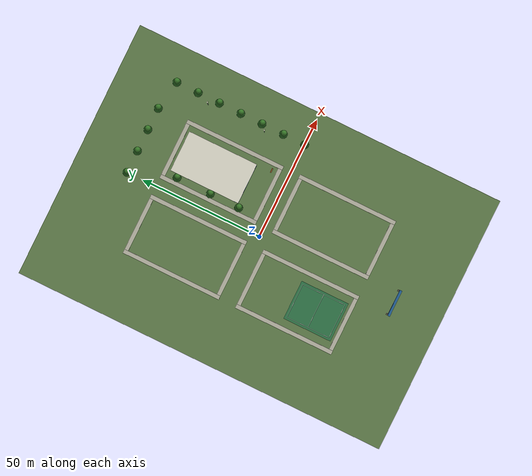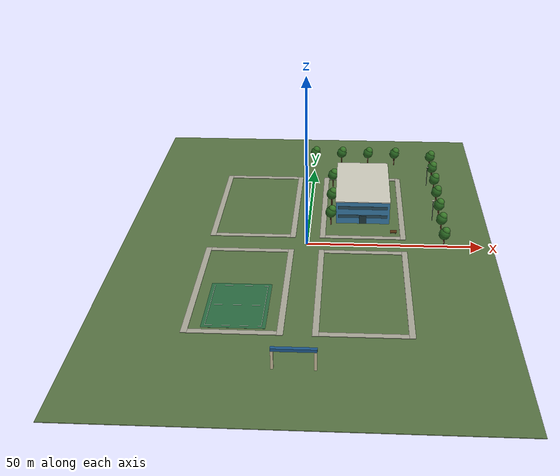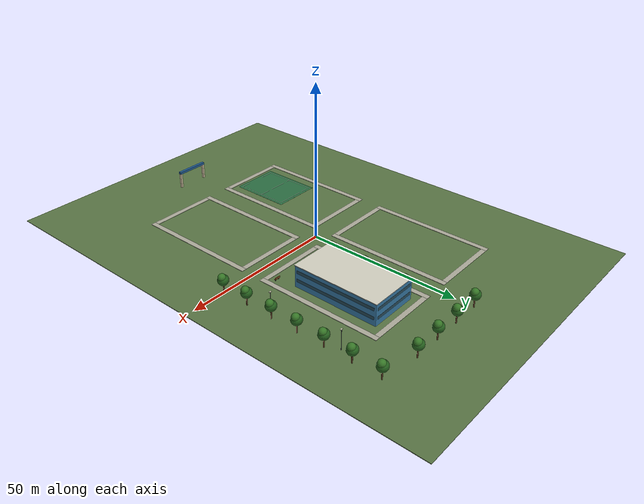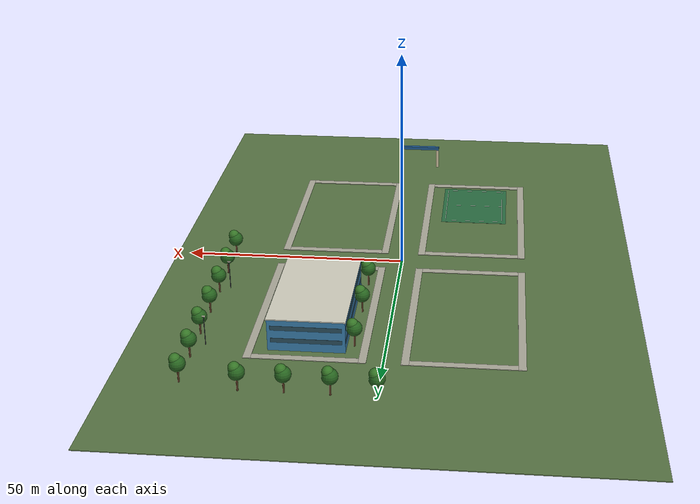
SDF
<sdf version="1.8">
 <world name="ute_city_v1">
  <model name="ground">
   <static>true</static>
   <link name="link">
    <visual name="ground">
     <pose>0 0 -0.1 0 0 0</pose>
     <geometry><box><size>106 154 0.2</size></box></geometry>
     <material>
      <ambient>0.35 0.46 0.27 1</ambient>
      <diffuse>0.35 0.46 0.27 1</diffuse>
      <specular>0.05 0.05 0.05 1</specular>
     </material>
    </visual>
    <collision name="ground_collision">
     <pose>0 0 -0.1 0 0 0</pose>
     <geometry><box><size>106 154 0.2</size></box></geometry>
    </collision>
   </link>
  </model>
  <model name="sidewalks">
   <static>true</static>
   <link name="link">
    <visual name="walk_0_0_w">
     <pose>-27.7 -24 0.075 0 0 0</pose>
     <geometry><box><size>1.6 41 0.15</size></box></geometry>
     <material>
      <ambient>0.68 0.67 0.61 1</ambient>
      <diffuse>0.68 0.67 0.61 1</diffuse>
      <specular>0.05 0.05 0.05 1</specular>
     </material>
    </visual>
    <collision name="walk_0_0_w_collision">
     <pose>-27.7 -24 0.075 0 0 0</pose>
     <geometry><box><size>1.6 41 0.15</size></box></geometry>
    </collision>
    <visual name="walk_0_0_e">
     <pose>-4.3 -24 0.075 0 0 0</pose>
     <geometry><box><size>1.6 41 0.15</size></box></geometry>
     <material>
      <ambient>0.68 0.67 0.61 1</ambient>
      <diffuse>0.68 0.67 0.61 1</diffuse>
      <specular>0.05 0.05 0.05 1</specular>
     </material>
    </visual>
    <collision name="walk_0_0_e_collision">
     <pose>-4.3 -24 0.075 0 0 0</pose>
     <geometry><box><size>1.6 41 0.15</size></box></geometry>
    </collision>
    <visual name="walk_0_0_s">
     <pose>-16 -43.7 0.075 0 0 0</pose>
     <geometry><box><size>21.8 1.6 0.15</size></box></geometry>
     <material>
      <ambient>0.68 0.67 0.61 1</ambient>
      <diffuse>0.68 0.67 0.61 1</diffuse>
      <specular>0.05 0.05 0.05 1</specular>
     </material>
    </visual>
    <collision name="walk_0_0_s_collision">
     <pose>-16 -43.7 0.075 0 0 0</pose>
     <geometry><box><size>21.8 1.6 0.15</size></box></geometry>
    </collision>
    <visual name="walk_0_0_n">
     <pose>-16 -4.3 0.075 0 0 0</pose>
     <geometry><box><size>21.8 1.6 0.15</size></box></geometry>
     <material>
      <ambient>0.68 0.67 0.61 1</ambient>
      <diffuse>0.68 0.67 0.61 1</diffuse>
      <specular>0.05 0.05 0.05 1</specular>
     </material>
    </visual>
    <collision name="walk_0_0_n_collision">
     <pose>-16 -4.3 0.075 0 0 0</pose>
     <geometry><box><size>21.8 1.6 0.15</size></box></geometry>
    </collision>
    <visual name="walk_0_1_w">
     <pose>-27.7 24 0.075 0 0 0</pose>
     <geometry><box><size>1.6 41 0.15</size></box></geometry>
     <material>
      <ambient>0.68 0.67 0.61 1</ambient>
      <diffuse>0.68 0.67 0.61 1</diffuse>
      <specular>0.05 0.05 0.05 1</specular>
     </material>
    </visual>
    <collision name="walk_0_1_w_collision">
     <pose>-27.7 24 0.075 0 0 0</pose>
     <geometry><box><size>1.6 41 0.15</size></box></geometry>
    </collision>
    <visual name="walk_0_1_e">
     <pose>-4.3 24 0.075 0 0 0</pose>
     <geometry><box><size>1.6 41 0.15</size></box></geometry>
     <material>
      <ambient>0.68 0.67 0.61 1</ambient>
      <diffuse>0.68 0.67 0.61 1</diffuse>
      <specular>0.05 0.05 0.05 1</specular>
     </material>
    </visual>
    <collision name="walk_0_1_e_collision">
     <pose>-4.3 24 0.075 0 0 0</pose>
     <geometry><box><size>1.6 41 0.15</size></box></geometry>
    </collision>
    <visual name="walk_0_1_s">
     <pose>-16 4.3 0.075 0 0 0</pose>
     <geometry><box><size>21.8 1.6 0.15</size></box></geometry>
     <material>
      <ambient>0.68 0.67 0.61 1</ambient>
      <diffuse>0.68 0.67 0.61 1</diffuse>
      <specular>0.05 0.05 0.05 1</specular>
     </material>
    </visual>
    <collision name="walk_0_1_s_collision">
     <pose>-16 4.3 0.075 0 0 0</pose>
     <geometry><box><size>21.8 1.6 0.15</size></box></geometry>
    </collision>
    <visual name="walk_0_1_n">
     <pose>-16 43.7 0.075 0 0 0</pose>
     <geometry><box><size>21.8 1.6 0.15</size></box></geometry>
     <material>
      <ambient>0.68 0.67 0.61 1</ambient>
      <diffuse>0.68 0.67 0.61 1</diffuse>
      <specular>0.05 0.05 0.05 1</specular>
     </material>
    </visual>
    <collision name="walk_0_1_n_collision">
     <pose>-16 43.7 0.075 0 0 0</pose>
     <geometry><box><size>21.8 1.6 0.15</size></box></geometry>
    </collision>
    <visual name="walk_1_0_w">
     <pose>4.3 -24 0.075 0 0 0</pose>
     <geometry><box><size>1.6 41 0.15</size></box></geometry>
     <material>
      <ambient>0.68 0.67 0.61 1</ambient>
      <diffuse>0.68 0.67 0.61 1</diffuse>
      <specular>0.05 0.05 0.05 1</specular>
     </material>
    </visual>
    <collision name="walk_1_0_w_collision">
     <pose>4.3 -24 0.075 0 0 0</pose>
     <geometry><box><size>1.6 41 0.15</size></box></geometry>
    </collision>
    <visual name="walk_1_0_e">
     <pose>27.7 -24 0.075 0 0 0</pose>
     <geometry><box><size>1.6 41 0.15</size></box></geometry>
     <material>
      <ambient>0.68 0.67 0.61 1</ambient>
      <diffuse>0.68 0.67 0.61 1</diffuse>
      <specular>0.05 0.05 0.05 1</specular>
     </material>
    </visual>
    <collision name="walk_1_0_e_collision">
     <pose>27.7 -24 0.075 0 0 0</pose>
     <geometry><box><size>1.6 41 0.15</size></box></geometry>
    </collision>
    <visual name="walk_1_0_s">
     <pose>16 -43.7 0.075 0 0 0</pose>
     <geometry><box><size>21.8 1.6 0.15</size></box></geometry>
     <material>
      <ambient>0.68 0.67 0.61 1</ambient>
      <diffuse>0.68 0.67 0.61 1</diffuse>
      <specular>0.05 0.05 0.05 1</specular>
     </material>
    </visual>
    <collision name="walk_1_0_s_collision">
     <pose>16 -43.7 0.075 0 0 0</pose>
     <geometry><box><size>21.8 1.6 0.15</size></box></geometry>
    </collision>
    <visual name="walk_1_0_n">
     <pose>16 -4.3 0.075 0 0 0</pose>
     <geometry><box><size>21.8 1.6 0.15</size></box></geometry>
     <material>
      <ambient>0.68 0.67 0.61 1</ambient>
      <diffuse>0.68 0.67 0.61 1</diffuse>
      <specular>0.05 0.05 0.05 1</specular>
     </material>
    </visual>
    <collision name="walk_1_0_n_collision">
     <pose>16 -4.3 0.075 0 0 0</pose>
     <geometry><box><size>21.8 1.6 0.15</size></box></geometry>
    </collision>
    <visual name="walk_1_1_w">
     <pose>4.3 24 0.075 0 0 0</pose>
     <geometry><box><size>1.6 41 0.15</size></box></geometry>
     <material>
      <ambient>0.68 0.67 0.61 1</ambient>
      <diffuse>0.68 0.67 0.61 1</diffuse>
      <specular>0.05 0.05 0.05 1</specular>
     </material>
    </visual>
    <collision name="walk_1_1_w_collision">
     <pose>4.3 24 0.075 0 0 0</pose>
     <geometry><box><size>1.6 41 0.15</size></box></geometry>
    </collision>
    <visual name="walk_1_1_e">
     <pose>27.7 24 0.075 0 0 0</pose>
     <geometry><box><size>1.6 41 0.15</size></box></geometry>
     <material>
      <ambient>0.68 0.67 0.61 1</ambient>
      <diffuse>0.68 0.67 0.61 1</diffuse>
      <specular>0.05 0.05 0.05 1</specular>
     </material>
    </visual>
    <collision name="walk_1_1_e_collision">
     <pose>27.7 24 0.075 0 0 0</pose>
     <geometry><box><size>1.6 41 0.15</size></box></geometry>
    </collision>
    <visual name="walk_1_1_s">
     <pose>16 4.3 0.075 0 0 0</pose>
     <geometry><box><size>21.8 1.6 0.15</size></box></geometry>
     <material>
      <ambient>0.68 0.67 0.61 1</ambient>
      <diffuse>0.68 0.67 0.61 1</diffuse>
      <specular>0.05 0.05 0.05 1</specular>
     </material>
    </visual>
    <collision name="walk_1_1_s_collision">
     <pose>16 4.3 0.075 0 0 0</pose>
     <geometry><box><size>21.8 1.6 0.15</size></box></geometry>
    </collision>
    <visual name="walk_1_1_n">
     <pose>16 43.7 0.075 0 0 0</pose>
     <geometry><box><size>21.8 1.6 0.15</size></box></geometry>
     <material>
      <ambient>0.68 0.67 0.61 1</ambient>
      <diffuse>0.68 0.67 0.61 1</diffuse>
      <specular>0.05 0.05 0.05 1</specular>
     </material>
    </visual>
    <collision name="walk_1_1_n_collision">
     <pose>16 43.7 0.075 0 0 0</pose>
     <geometry><box><size>21.8 1.6 0.15</size></box></geometry>
    </collision>
   </link>
  </model>
  <model name="E_workshops">
   <static>true</static>
   <pose>16 27 0 0 0 0</pose>
   <link name="link">
    <visual name="block">
     <pose>0 0 3.5 0 0 0</pose>
     <geometry><box><size>16 28 7</size></box></geometry>
     <material>
      <ambient>0.22 0.49 0.67 1</ambient>
      <diffuse>0.22 0.49 0.67 1</diffuse>
      <specular>0.05 0.05 0.05 1</specular>
     </material>
    </visual>
    <collision name="block_collision">
     <pose>0 0 3.5 0 0 0</pose>
     <geometry><box><size>16 28 7</size></box></geometry>
    </collision>
    <visual name="roof">
     <pose>0 0 7.12 0 0 0</pose>
     <geometry><box><size>16.3 28.3 0.24</size></box></geometry>
     <material>
      <ambient>0.83 0.82 0.76 1</ambient>
      <diffuse>0.83 0.82 0.76 1</diffuse>
      <specular>0.05 0.05 0.05 1</specular>
     </material>
    </visual>
    <collision name="roof_collision">
     <pose>0 0 7.12 0 0 0</pose>
     <geometry><box><size>16.3 28.3 0.24</size></box></geometry>
    </collision>
    <visual name="windows_y_1_-1">
     <pose>0 -14.018 2.4 0 0 0</pose>
     <geometry><box><size>14.7 0.03 1</size></box></geometry>
     <material>
      <ambient>0.16 0.30 0.36 1</ambient>
      <diffuse>0.16 0.30 0.36 1</diffuse>
      <specular>0.05 0.05 0.05 1</specular>
     </material>
    </visual>
    <visual name="windows_x_1_-1">
     <pose>-8.018 0 2.4 0 0 0</pose>
     <geometry><box><size>0.03 26.7 1</size></box></geometry>
     <material>
      <ambient>0.16 0.30 0.36 1</ambient>
      <diffuse>0.16 0.30 0.36 1</diffuse>
      <specular>0.05 0.05 0.05 1</specular>
     </material>
    </visual>
    <visual name="windows_y_1_1">
     <pose>0 14.018 2.4 0 0 0</pose>
     <geometry><box><size>14.7 0.03 1</size></box></geometry>
     <material>
      <ambient>0.16 0.30 0.36 1</ambient>
      <diffuse>0.16 0.30 0.36 1</diffuse>
      <specular>0.05 0.05 0.05 1</specular>
     </material>
    </visual>
    <visual name="windows_x_1_1">
     <pose>8.018 0 2.4 0 0 0</pose>
     <geometry><box><size>0.03 26.7 1</size></box></geometry>
     <material>
      <ambient>0.16 0.30 0.36 1</ambient>
      <diffuse>0.16 0.30 0.36 1</diffuse>
      <specular>0.05 0.05 0.05 1</specular>
     </material>
    </visual>
    <visual name="windows_y_2_-1">
     <pose>0 -14.018 5.2 0 0 0</pose>
     <geometry><box><size>14.7 0.03 1</size></box></geometry>
     <material>
      <ambient>0.16 0.30 0.36 1</ambient>
      <diffuse>0.16 0.30 0.36 1</diffuse>
      <specular>0.05 0.05 0.05 1</specular>
     </material>
    </visual>
    <visual name="windows_x_2_-1">
     <pose>-8.018 0 5.2 0 0 0</pose>
     <geometry><box><size>0.03 26.7 1</size></box></geometry>
     <material>
      <ambient>0.16 0.30 0.36 1</ambient>
      <diffuse>0.16 0.30 0.36 1</diffuse>
      <specular>0.05 0.05 0.05 1</specular>
     </material>
    </visual>
    <visual name="windows_y_2_1">
     <pose>0 14.018 5.2 0 0 0</pose>
     <geometry><box><size>14.7 0.03 1</size></box></geometry>
     <material>
      <ambient>0.16 0.30 0.36 1</ambient>
      <diffuse>0.16 0.30 0.36 1</diffuse>
      <specular>0.05 0.05 0.05 1</specular>
     </material>
    </visual>
    <visual name="windows_x_2_1">
     <pose>8.018 0 5.2 0 0 0</pose>
     <geometry><box><size>0.03 26.7 1</size></box></geometry>
     <material>
      <ambient>0.16 0.30 0.36 1</ambient>
      <diffuse>0.16 0.30 0.36 1</diffuse>
      <specular>0.05 0.05 0.05 1</specular>
     </material>
    </visual>
    <visual name="entry">
     <pose>0 -14.018 1.3 0 0 0</pose>
     <geometry><box><size>2.1 0.04 2.6</size></box></geometry>
     <material>
      <ambient>0.12 0.22 0.24 1</ambient>
      <diffuse>0.12 0.22 0.24 1</diffuse>
      <specular>0.05 0.05 0.05 1</specular>
     </material>
    </visual>
   </link>
  </model>
  <model name="sports_field">
   <static>true</static>
   <link name="link">
    <visual name="turf">
     <pose>-16 -32 0.012 0 0 0</pose>
     <geometry><box><size>16 20 0.02</size></box></geometry>
     <material>
      <ambient>0.17 0.43 0.26 1</ambient>
      <diffuse>0.17 0.43 0.26 1</diffuse>
      <specular>0.05 0.05 0.05 1</specular>
     </material>
    </visual>
    <visual name="sideline_-1">
     <pose>-23 -32 0.025 0 0 0</pose>
     <geometry><box><size>0.1 18 0.002</size></box></geometry>
     <material>
      <ambient>0.95 0.95 0.92 1</ambient>
      <diffuse>0.95 0.95 0.92 1</diffuse>
      <specular>0.05 0.05 0.05 1</specular>
     </material>
    </visual>
    <visual name="endline_-1">
     <pose>-16 -41 0.025 0 0 0</pose>
     <geometry><box><size>14 0.1 0.002</size></box></geometry>
     <material>
      <ambient>0.95 0.95 0.92 1</ambient>
      <diffuse>0.95 0.95 0.92 1</diffuse>
      <specular>0.05 0.05 0.05 1</specular>
     </material>
    </visual>
    <visual name="sideline_1">
     <pose>-9 -32 0.025 0 0 0</pose>
     <geometry><box><size>0.1 18 0.002</size></box></geometry>
     <material>
      <ambient>0.95 0.95 0.92 1</ambient>
      <diffuse>0.95 0.95 0.92 1</diffuse>
      <specular>0.05 0.05 0.05 1</specular>
     </material>
    </visual>
    <visual name="endline_1">
     <pose>-16 -23 0.025 0 0 0</pose>
     <geometry><box><size>14 0.1 0.002</size></box></geometry>
     <material>
      <ambient>0.95 0.95 0.92 1</ambient>
      <diffuse>0.95 0.95 0.92 1</diffuse>
      <specular>0.05 0.05 0.05 1</specular>
     </material>
    </visual>
    <visual name="halfway">
     <pose>-16 -32 0.025 0 0 0</pose>
     <geometry><box><size>14 0.1 0.002</size></box></geometry>
     <material>
      <ambient>0.95 0.95 0.92 1</ambient>
      <diffuse>0.95 0.95 0.92 1</diffuse>
      <specular>0.05 0.05 0.05 1</specular>
     </material>
    </visual>
   </link>
  </model>
  <model name="tree_019">
   <static>true</static>
   <pose>39 0 0 0 0 0</pose>
   <link name="link">
    <visual name="trunk">
     <pose>0 0 1.6 0 0 0</pose>
     <geometry><cylinder><radius>0.2</radius><length>3.2</length></cylinder></geometry>
     <material>
      <ambient>0.30 0.19 0.10 1</ambient>
      <diffuse>0.30 0.19 0.10 1</diffuse>
      <specular>0.05 0.05 0.05 1</specular>
     </material>
    </visual>
    <collision name="trunk_collision">
     <pose>0 0 1.6 0 0 0</pose>
     <geometry><cylinder><radius>0.2</radius><length>3.2</length></cylinder></geometry>
    </collision>
    <visual name="canopy">
     <pose>0 0 4.2 0 0 0</pose>
     <geometry><sphere><radius>1.65</radius></sphere></geometry>
     <material>
      <ambient>0.15 0.39 0.12 1</ambient>
      <diffuse>0.15 0.39 0.12 1</diffuse>
      <specular>0.05 0.05 0.05 1</specular>
     </material>
    </visual>
    <visual name="crown">
     <pose>0.4 0 5.2 0 0 0</pose>
     <geometry><sphere><radius>1.2</radius></sphere></geometry>
     <material>
      <ambient>0.21 0.46 0.15 1</ambient>
      <diffuse>0.21 0.46 0.15 1</diffuse>
      <specular>0.05 0.05 0.05 1</specular>
     </material>
    </visual>
   </link>
  </model>
  <model name="tree_020">
   <static>true</static>
   <pose>39 9 0 0 0 0</pose>
   <link name="link">
    <visual name="trunk">
     <pose>0 0 1.6 0 0 0</pose>
     <geometry><cylinder><radius>0.2</radius><length>3.2</length></cylinder></geometry>
     <material>
      <ambient>0.30 0.19 0.10 1</ambient>
      <diffuse>0.30 0.19 0.10 1</diffuse>
      <specular>0.05 0.05 0.05 1</specular>
     </material>
    </visual>
    <collision name="trunk_collision">
     <pose>0 0 1.6 0 0 0</pose>
     <geometry><cylinder><radius>0.2</radius><length>3.2</length></cylinder></geometry>
    </collision>
    <visual name="canopy">
     <pose>0 0 4.2 0 0 0</pose>
     <geometry><sphere><radius>1.65</radius></sphere></geometry>
     <material>
      <ambient>0.15 0.39 0.12 1</ambient>
      <diffuse>0.15 0.39 0.12 1</diffuse>
      <specular>0.05 0.05 0.05 1</specular>
     </material>
    </visual>
    <visual name="crown">
     <pose>0.4 0 5.2 0 0 0</pose>
     <geometry><sphere><radius>1.2</radius></sphere></geometry>
     <material>
      <ambient>0.21 0.46 0.15 1</ambient>
      <diffuse>0.21 0.46 0.15 1</diffuse>
      <specular>0.05 0.05 0.05 1</specular>
     </material>
    </visual>
   </link>
  </model>
  <model name="tree_021">
   <static>true</static>
   <pose>39 18 0 0 0 0</pose>
   <link name="link">
    <visual name="trunk">
     <pose>0 0 1.6 0 0 0</pose>
     <geometry><cylinder><radius>0.2</radius><length>3.2</length></cylinder></geometry>
     <material>
      <ambient>0.30 0.19 0.10 1</ambient>
      <diffuse>0.30 0.19 0.10 1</diffuse>
      <specular>0.05 0.05 0.05 1</specular>
     </material>
    </visual>
    <collision name="trunk_collision">
     <pose>0 0 1.6 0 0 0</pose>
     <geometry><cylinder><radius>0.2</radius><length>3.2</length></cylinder></geometry>
    </collision>
    <visual name="canopy">
     <pose>0 0 4.2 0 0 0</pose>
     <geometry><sphere><radius>1.65</radius></sphere></geometry>
     <material>
      <ambient>0.15 0.39 0.12 1</ambient>
      <diffuse>0.15 0.39 0.12 1</diffuse>
      <specular>0.05 0.05 0.05 1</specular>
     </material>
    </visual>
    <visual name="crown">
     <pose>0.4 0 5.2 0 0 0</pose>
     <geometry><sphere><radius>1.2</radius></sphere></geometry>
     <material>
      <ambient>0.21 0.46 0.15 1</ambient>
      <diffuse>0.21 0.46 0.15 1</diffuse>
      <specular>0.05 0.05 0.05 1</specular>
     </material>
    </visual>
   </link>
  </model>
  <model name="tree_022">
   <static>true</static>
   <pose>39 27 0 0 0 0</pose>
   <link name="link">
    <visual name="trunk">
     <pose>0 0 1.6 0 0 0</pose>
     <geometry><cylinder><radius>0.2</radius><length>3.2</length></cylinder></geometry>
     <material>
      <ambient>0.30 0.19 0.10 1</ambient>
      <diffuse>0.30 0.19 0.10 1</diffuse>
      <specular>0.05 0.05 0.05 1</specular>
     </material>
    </visual>
    <collision name="trunk_collision">
     <pose>0 0 1.6 0 0 0</pose>
     <geometry><cylinder><radius>0.2</radius><length>3.2</length></cylinder></geometry>
    </collision>
    <visual name="canopy">
     <pose>0 0 4.2 0 0 0</pose>
     <geometry><sphere><radius>1.65</radius></sphere></geometry>
     <material>
      <ambient>0.15 0.39 0.12 1</ambient>
      <diffuse>0.15 0.39 0.12 1</diffuse>
      <specular>0.05 0.05 0.05 1</specular>
     </material>
    </visual>
    <visual name="crown">
     <pose>0.4 0 5.2 0 0 0</pose>
     <geometry><sphere><radius>1.2</radius></sphere></geometry>
     <material>
      <ambient>0.21 0.46 0.15 1</ambient>
      <diffuse>0.21 0.46 0.15 1</diffuse>
      <specular>0.05 0.05 0.05 1</specular>
     </material>
    </visual>
   </link>
  </model>
  <model name="tree_023">
   <static>true</static>
   <pose>39 36 0 0 0 0</pose>
   <link name="link">
    <visual name="trunk">
     <pose>0 0 1.6 0 0 0</pose>
     <geometry><cylinder><radius>0.2</radius><length>3.2</length></cylinder></geometry>
     <material>
      <ambient>0.30 0.19 0.10 1</ambient>
      <diffuse>0.30 0.19 0.10 1</diffuse>
      <specular>0.05 0.05 0.05 1</specular>
     </material>
    </visual>
    <collision name="trunk_collision">
     <pose>0 0 1.6 0 0 0</pose>
     <geometry><cylinder><radius>0.2</radius><length>3.2</length></cylinder></geometry>
    </collision>
    <visual name="canopy">
     <pose>0 0 4.2 0 0 0</pose>
     <geometry><sphere><radius>1.65</radius></sphere></geometry>
     <material>
      <ambient>0.15 0.39 0.12 1</ambient>
      <diffuse>0.15 0.39 0.12 1</diffuse>
      <specular>0.05 0.05 0.05 1</specular>
     </material>
    </visual>
    <visual name="crown">
     <pose>0.4 0 5.2 0 0 0</pose>
     <geometry><sphere><radius>1.2</radius></sphere></geometry>
     <material>
      <ambient>0.21 0.46 0.15 1</ambient>
      <diffuse>0.21 0.46 0.15 1</diffuse>
      <specular>0.05 0.05 0.05 1</specular>
     </material>
    </visual>
   </link>
  </model>
  <model name="tree_024">
   <static>true</static>
   <pose>39 45 0 0 0 0</pose>
   <link name="link">
    <visual name="trunk">
     <pose>0 0 1.6 0 0 0</pose>
     <geometry><cylinder><radius>0.2</radius><length>3.2</length></cylinder></geometry>
     <material>
      <ambient>0.30 0.19 0.10 1</ambient>
      <diffuse>0.30 0.19 0.10 1</diffuse>
      <specular>0.05 0.05 0.05 1</specular>
     </material>
    </visual>
    <collision name="trunk_collision">
     <pose>0 0 1.6 0 0 0</pose>
     <geometry><cylinder><radius>0.2</radius><length>3.2</length></cylinder></geometry>
    </collision>
    <visual name="canopy">
     <pose>0 0 4.2 0 0 0</pose>
     <geometry><sphere><radius>1.65</radius></sphere></geometry>
     <material>
      <ambient>0.15 0.39 0.12 1</ambient>
      <diffuse>0.15 0.39 0.12 1</diffuse>
      <specular>0.05 0.05 0.05 1</specular>
     </material>
    </visual>
    <visual name="crown">
     <pose>0.4 0 5.2 0 0 0</pose>
     <geometry><sphere><radius>1.2</radius></sphere></geometry>
     <material>
      <ambient>0.21 0.46 0.15 1</ambient>
      <diffuse>0.21 0.46 0.15 1</diffuse>
      <specular>0.05 0.05 0.05 1</specular>
     </material>
    </visual>
   </link>
  </model>
  <model name="tree_025">
   <static>true</static>
   <pose>39 54 0 0 0 0</pose>
   <link name="link">
    <visual name="trunk">
     <pose>0 0 1.6 0 0 0</pose>
     <geometry><cylinder><radius>0.2</radius><length>3.2</length></cylinder></geometry>
     <material>
      <ambient>0.30 0.19 0.10 1</ambient>
      <diffuse>0.30 0.19 0.10 1</diffuse>
      <specular>0.05 0.05 0.05 1</specular>
     </material>
    </visual>
    <collision name="trunk_collision">
     <pose>0 0 1.6 0 0 0</pose>
     <geometry><cylinder><radius>0.2</radius><length>3.2</length></cylinder></geometry>
    </collision>
    <visual name="canopy">
     <pose>0 0 4.2 0 0 0</pose>
     <geometry><sphere><radius>1.65</radius></sphere></geometry>
     <material>
      <ambient>0.15 0.39 0.12 1</ambient>
      <diffuse>0.15 0.39 0.12 1</diffuse>
      <specular>0.05 0.05 0.05 1</specular>
     </material>
    </visual>
    <visual name="crown">
     <pose>0.4 0 5.2 0 0 0</pose>
     <geometry><sphere><radius>1.2</radius></sphere></geometry>
     <material>
      <ambient>0.21 0.46 0.15 1</ambient>
      <diffuse>0.21 0.46 0.15 1</diffuse>
      <specular>0.05 0.05 0.05 1</specular>
     </material>
    </visual>
   </link>
  </model>
  <model name="tree_029">
   <static>true</static>
   <pose>0 56 0 0 0 0</pose>
   <link name="link">
    <visual name="trunk">
     <pose>0 0 1.6 0 0 0</pose>
     <geometry><cylinder><radius>0.2</radius><length>3.2</length></cylinder></geometry>
     <material>
      <ambient>0.30 0.19 0.10 1</ambient>
      <diffuse>0.30 0.19 0.10 1</diffuse>
      <specular>0.05 0.05 0.05 1</specular>
     </material>
    </visual>
    <collision name="trunk_collision">
     <pose>0 0 1.6 0 0 0</pose>
     <geometry><cylinder><radius>0.2</radius><length>3.2</length></cylinder></geometry>
    </collision>
    <visual name="canopy">
     <pose>0 0 4.2 0 0 0</pose>
     <geometry><sphere><radius>1.65</radius></sphere></geometry>
     <material>
      <ambient>0.15 0.39 0.12 1</ambient>
      <diffuse>0.15 0.39 0.12 1</diffuse>
      <specular>0.05 0.05 0.05 1</specular>
     </material>
    </visual>
    <visual name="crown">
     <pose>0.4 0 5.2 0 0 0</pose>
     <geometry><sphere><radius>1.2</radius></sphere></geometry>
     <material>
      <ambient>0.21 0.46 0.15 1</ambient>
      <diffuse>0.21 0.46 0.15 1</diffuse>
      <specular>0.05 0.05 0.05 1</specular>
     </material>
    </visual>
   </link>
  </model>
  <model name="tree_030">
   <static>true</static>
   <pose>9 56 0 0 0 0</pose>
   <link name="link">
    <visual name="trunk">
     <pose>0 0 1.6 0 0 0</pose>
     <geometry><cylinder><radius>0.2</radius><length>3.2</length></cylinder></geometry>
     <material>
      <ambient>0.30 0.19 0.10 1</ambient>
      <diffuse>0.30 0.19 0.10 1</diffuse>
      <specular>0.05 0.05 0.05 1</specular>
     </material>
    </visual>
    <collision name="trunk_collision">
     <pose>0 0 1.6 0 0 0</pose>
     <geometry><cylinder><radius>0.2</radius><length>3.2</length></cylinder></geometry>
    </collision>
    <visual name="canopy">
     <pose>0 0 4.2 0 0 0</pose>
     <geometry><sphere><radius>1.65</radius></sphere></geometry>
     <material>
      <ambient>0.15 0.39 0.12 1</ambient>
      <diffuse>0.15 0.39 0.12 1</diffuse>
      <specular>0.05 0.05 0.05 1</specular>
     </material>
    </visual>
    <visual name="crown">
     <pose>0.4 0 5.2 0 0 0</pose>
     <geometry><sphere><radius>1.2</radius></sphere></geometry>
     <material>
      <ambient>0.21 0.46 0.15 1</ambient>
      <diffuse>0.21 0.46 0.15 1</diffuse>
      <specular>0.05 0.05 0.05 1</specular>
     </material>
    </visual>
   </link>
  </model>
  <model name="tree_031">
   <static>true</static>
   <pose>18 56 0 0 0 0</pose>
   <link name="link">
    <visual name="trunk">
     <pose>0 0 1.6 0 0 0</pose>
     <geometry><cylinder><radius>0.2</radius><length>3.2</length></cylinder></geometry>
     <material>
      <ambient>0.30 0.19 0.10 1</ambient>
      <diffuse>0.30 0.19 0.10 1</diffuse>
      <specular>0.05 0.05 0.05 1</specular>
     </material>
    </visual>
    <collision name="trunk_collision">
     <pose>0 0 1.6 0 0 0</pose>
     <geometry><cylinder><radius>0.2</radius><length>3.2</length></cylinder></geometry>
    </collision>
    <visual name="canopy">
     <pose>0 0 4.2 0 0 0</pose>
     <geometry><sphere><radius>1.65</radius></sphere></geometry>
     <material>
      <ambient>0.15 0.39 0.12 1</ambient>
      <diffuse>0.15 0.39 0.12 1</diffuse>
      <specular>0.05 0.05 0.05 1</specular>
     </material>
    </visual>
    <visual name="crown">
     <pose>0.4 0 5.2 0 0 0</pose>
     <geometry><sphere><radius>1.2</radius></sphere></geometry>
     <material>
      <ambient>0.21 0.46 0.15 1</ambient>
      <diffuse>0.21 0.46 0.15 1</diffuse>
      <specular>0.05 0.05 0.05 1</specular>
     </material>
    </visual>
   </link>
  </model>
  <model name="tree_032">
   <static>true</static>
   <pose>27 56 0 0 0 0</pose>
   <link name="link">
    <visual name="trunk">
     <pose>0 0 1.6 0 0 0</pose>
     <geometry><cylinder><radius>0.2</radius><length>3.2</length></cylinder></geometry>
     <material>
      <ambient>0.30 0.19 0.10 1</ambient>
      <diffuse>0.30 0.19 0.10 1</diffuse>
      <specular>0.05 0.05 0.05 1</specular>
     </material>
    </visual>
    <collision name="trunk_collision">
     <pose>0 0 1.6 0 0 0</pose>
     <geometry><cylinder><radius>0.2</radius><length>3.2</length></cylinder></geometry>
    </collision>
    <visual name="canopy">
     <pose>0 0 4.2 0 0 0</pose>
     <geometry><sphere><radius>1.65</radius></sphere></geometry>
     <material>
      <ambient>0.15 0.39 0.12 1</ambient>
      <diffuse>0.15 0.39 0.12 1</diffuse>
      <specular>0.05 0.05 0.05 1</specular>
     </material>
    </visual>
    <visual name="crown">
     <pose>0.4 0 5.2 0 0 0</pose>
     <geometry><sphere><radius>1.2</radius></sphere></geometry>
     <material>
      <ambient>0.21 0.46 0.15 1</ambient>
      <diffuse>0.21 0.46 0.15 1</diffuse>
      <specular>0.05 0.05 0.05 1</specular>
     </material>
    </visual>
   </link>
  </model>
  <model name="tree_044">
   <static>true</static>
   <pose>6.5 12 0 0 0 0</pose>
   <link name="link">
    <visual name="trunk">
     <pose>0 0 1.6 0 0 0</pose>
     <geometry><cylinder><radius>0.2</radius><length>3.2</length></cylinder></geometry>
     <material>
      <ambient>0.30 0.19 0.10 1</ambient>
      <diffuse>0.30 0.19 0.10 1</diffuse>
      <specular>0.05 0.05 0.05 1</specular>
     </material>
    </visual>
    <collision name="trunk_collision">
     <pose>0 0 1.6 0 0 0</pose>
     <geometry><cylinder><radius>0.2</radius><length>3.2</length></cylinder></geometry>
    </collision>
    <visual name="canopy">
     <pose>0 0 4.2 0 0 0</pose>
     <geometry><sphere><radius>1.65</radius></sphere></geometry>
     <material>
      <ambient>0.15 0.39 0.12 1</ambient>
      <diffuse>0.15 0.39 0.12 1</diffuse>
      <specular>0.05 0.05 0.05 1</specular>
     </material>
    </visual>
    <visual name="crown">
     <pose>0.4 0 5.2 0 0 0</pose>
     <geometry><sphere><radius>1.2</radius></sphere></geometry>
     <material>
      <ambient>0.21 0.46 0.15 1</ambient>
      <diffuse>0.21 0.46 0.15 1</diffuse>
      <specular>0.05 0.05 0.05 1</specular>
     </material>
    </visual>
   </link>
  </model>
  <model name="tree_045">
   <static>true</static>
   <pose>6.5 24 0 0 0 0</pose>
   <link name="link">
    <visual name="trunk">
     <pose>0 0 1.6 0 0 0</pose>
     <geometry><cylinder><radius>0.2</radius><length>3.2</length></cylinder></geometry>
     <material>
      <ambient>0.30 0.19 0.10 1</ambient>
      <diffuse>0.30 0.19 0.10 1</diffuse>
      <specular>0.05 0.05 0.05 1</specular>
     </material>
    </visual>
    <collision name="trunk_collision">
     <pose>0 0 1.6 0 0 0</pose>
     <geometry><cylinder><radius>0.2</radius><length>3.2</length></cylinder></geometry>
    </collision>
    <visual name="canopy">
     <pose>0 0 4.2 0 0 0</pose>
     <geometry><sphere><radius>1.65</radius></sphere></geometry>
     <material>
      <ambient>0.15 0.39 0.12 1</ambient>
      <diffuse>0.15 0.39 0.12 1</diffuse>
      <specular>0.05 0.05 0.05 1</specular>
     </material>
    </visual>
    <visual name="crown">
     <pose>0.4 0 5.2 0 0 0</pose>
     <geometry><sphere><radius>1.2</radius></sphere></geometry>
     <material>
      <ambient>0.21 0.46 0.15 1</ambient>
      <diffuse>0.21 0.46 0.15 1</diffuse>
      <specular>0.05 0.05 0.05 1</specular>
     </material>
    </visual>
   </link>
  </model>
  <model name="tree_046">
   <static>true</static>
   <pose>6.5 38 0 0 0 0</pose>
   <link name="link">
    <visual name="trunk">
     <pose>0 0 1.6 0 0 0</pose>
     <geometry><cylinder><radius>0.2</radius><length>3.2</length></cylinder></geometry>
     <material>
      <ambient>0.30 0.19 0.10 1</ambient>
      <diffuse>0.30 0.19 0.10 1</diffuse>
      <specular>0.05 0.05 0.05 1</specular>
     </material>
    </visual>
    <collision name="trunk_collision">
     <pose>0 0 1.6 0 0 0</pose>
     <geometry><cylinder><radius>0.2</radius><length>3.2</length></cylinder></geometry>
    </collision>
    <visual name="canopy">
     <pose>0 0 4.2 0 0 0</pose>
     <geometry><sphere><radius>1.65</radius></sphere></geometry>
     <material>
      <ambient>0.15 0.39 0.12 1</ambient>
      <diffuse>0.15 0.39 0.12 1</diffuse>
      <specular>0.05 0.05 0.05 1</specular>
     </material>
    </visual>
    <visual name="crown">
     <pose>0.4 0 5.2 0 0 0</pose>
     <geometry><sphere><radius>1.2</radius></sphere></geometry>
     <material>
      <ambient>0.21 0.46 0.15 1</ambient>
      <diffuse>0.21 0.46 0.15 1</diffuse>
      <specular>0.05 0.05 0.05 1</specular>
     </material>
    </visual>
   </link>
  </model>
  <model name="main_gate">
   <static>true</static>
   <link name="link">
    <visual name="pillar_-1">
     <pose>-5 -57 2.6 0 0 0</pose>
     <geometry><box><size>0.65 0.8 5.2</size></box></geometry>
     <material>
      <ambient>0.80 0.75 0.62 1</ambient>
      <diffuse>0.80 0.75 0.62 1</diffuse>
      <specular>0.05 0.05 0.05 1</specular>
     </material>
    </visual>
    <collision name="pillar_-1_collision">
     <pose>-5 -57 2.6 0 0 0</pose>
     <geometry><box><size>0.65 0.8 5.2</size></box></geometry>
    </collision>
    <visual name="pillar_1">
     <pose>5 -57 2.6 0 0 0</pose>
     <geometry><box><size>0.65 0.8 5.2</size></box></geometry>
     <material>
      <ambient>0.80 0.75 0.62 1</ambient>
      <diffuse>0.80 0.75 0.62 1</diffuse>
      <specular>0.05 0.05 0.05 1</specular>
     </material>
    </visual>
    <collision name="pillar_1_collision">
     <pose>5 -57 2.6 0 0 0</pose>
     <geometry><box><size>0.65 0.8 5.2</size></box></geometry>
    </collision>
    <visual name="header">
     <pose>0 -57 5.4 0 0 0</pose>
     <geometry><box><size>10.7 0.9 0.8</size></box></geometry>
     <material>
      <ambient>0.12 0.35 0.56 1</ambient>
      <diffuse>0.12 0.35 0.56 1</diffuse>
      <specular>0.05 0.05 0.05 1</specular>
     </material>
    </visual>
    <collision name="header_collision">
     <pose>0 -57 5.4 0 0 0</pose>
     <geometry><box><size>10.7 0.9 0.8</size></box></geometry>
    </collision>
   </link>
  </model>
  <model name="lamp_6">
   <static>true</static>
   <pose>37 16 0 0 0 0</pose>
   <link name="link">
    <visual name="pole">
     <pose>0 0 3.3 0 0 0</pose>
     <geometry><cylinder><radius>0.08</radius><length>6.6</length></cylinder></geometry>
     <material>
      <ambient>0.25 0.27 0.29 1</ambient>
      <diffuse>0.25 0.27 0.29 1</diffuse>
      <specular>0.05 0.05 0.05 1</specular>
     </material>
    </visual>
    <collision name="pole_collision">
     <pose>0 0 3.3 0 0 0</pose>
     <geometry><cylinder><radius>0.08</radius><length>6.6</length></cylinder></geometry>
    </collision>
    <visual name="fixture">
     <pose>0 0 6.6 0 0 0</pose>
     <geometry><box><size>0.7 0.4 0.15</size></box></geometry>
     <material>
      <ambient>0.8 0.8 0.7 1</ambient>
      <diffuse>0.8 0.8 0.7 1</diffuse>
      <specular>0.05 0.05 0.05 1</specular>
     </material>
    </visual>
    <collision name="fixture_collision">
     <pose>0 0 6.6 0 0 0</pose>
     <geometry><box><size>0.7 0.4 0.15</size></box></geometry>
    </collision>
   </link>
  </model>
  <model name="lamp_7">
   <static>true</static>
   <pose>37 40 0 0 0 0</pose>
   <link name="link">
    <visual name="pole">
     <pose>0 0 3.3 0 0 0</pose>
     <geometry><cylinder><radius>0.08</radius><length>6.6</length></cylinder></geometry>
     <material>
      <ambient>0.25 0.27 0.29 1</ambient>
      <diffuse>0.25 0.27 0.29 1</diffuse>
      <specular>0.05 0.05 0.05 1</specular>
     </material>
    </visual>
    <collision name="pole_collision">
     <pose>0 0 3.3 0 0 0</pose>
     <geometry><cylinder><radius>0.08</radius><length>6.6</length></cylinder></geometry>
    </collision>
    <visual name="fixture">
     <pose>0 0 6.6 0 0 0</pose>
     <geometry><box><size>0.7 0.4 0.15</size></box></geometry>
     <material>
      <ambient>0.8 0.8 0.7 1</ambient>
      <diffuse>0.8 0.8 0.7 1</diffuse>
      <specular>0.05 0.05 0.05 1</specular>
     </material>
    </visual>
    <collision name="fixture_collision">
     <pose>0 0 6.6 0 0 0</pose>
     <geometry><box><size>0.7 0.4 0.15</size></box></geometry>
    </collision>
   </link>
  </model>
  <model name="bench_3">
   <static>true</static>
   <pose>25 7 0 0 0 0</pose>
   <link name="link">
    <visual name="seat">
     <pose>0 0 0.5 0 0 0</pose>
     <geometry><box><size>1.8 0.5 0.13</size></box></geometry>
     <material>
      <ambient>0.48 0.29 0.12 1</ambient>
      <diffuse>0.48 0.29 0.12 1</diffuse>
      <specular>0.05 0.05 0.05 1</specular>
     </material>
    </visual>
    <collision name="seat_collision">
     <pose>0 0 0.5 0 0 0</pose>
     <geometry><box><size>1.8 0.5 0.13</size></box></geometry>
    </collision>
    <visual name="back">
     <pose>0 0.22 0.85 0 0 0</pose>
     <geometry><box><size>1.8 0.12 0.6</size></box></geometry>
     <material>
      <ambient>0.48 0.29 0.12 1</ambient>
      <diffuse>0.48 0.29 0.12 1</diffuse>
      <specular>0.05 0.05 0.05 1</specular>
     </material>
    </visual>
    <collision name="back_collision">
     <pose>0 0.22 0.85 0 0 0</pose>
     <geometry><box><size>1.8 0.12 0.6</size></box></geometry>
    </collision>
    <visual name="leg_-1">
     <pose>-0.65 0 0.25 0 0 0</pose>
     <geometry><box><size>0.1 0.4 0.5</size></box></geometry>
     <material>
      <ambient>0.2 0.2 0.2 1</ambient>
      <diffuse>0.2 0.2 0.2 1</diffuse>
      <specular>0.05 0.05 0.05 1</specular>
     </material>
    </visual>
    <collision name="leg_-1_collision">
     <pose>-0.65 0 0.25 0 0 0</pose>
     <geometry><box><size>0.1 0.4 0.5</size></box></geometry>
    </collision>
    <visual name="leg_1">
     <pose>0.65 0 0.25 0 0 0</pose>
     <geometry><box><size>0.1 0.4 0.5</size></box></geometry>
     <material>
      <ambient>0.2 0.2 0.2 1</ambient>
      <diffuse>0.2 0.2 0.2 1</diffuse>
      <specular>0.05 0.05 0.05 1</specular>
     </material>
    </visual>
    <collision name="leg_1_collision">
     <pose>0.65 0 0.25 0 0 0</pose>
     <geometry><box><size>0.1 0.4 0.5</size></box></geometry>
    </collision>
   </link>
  </model>
 </world>
</sdf>
